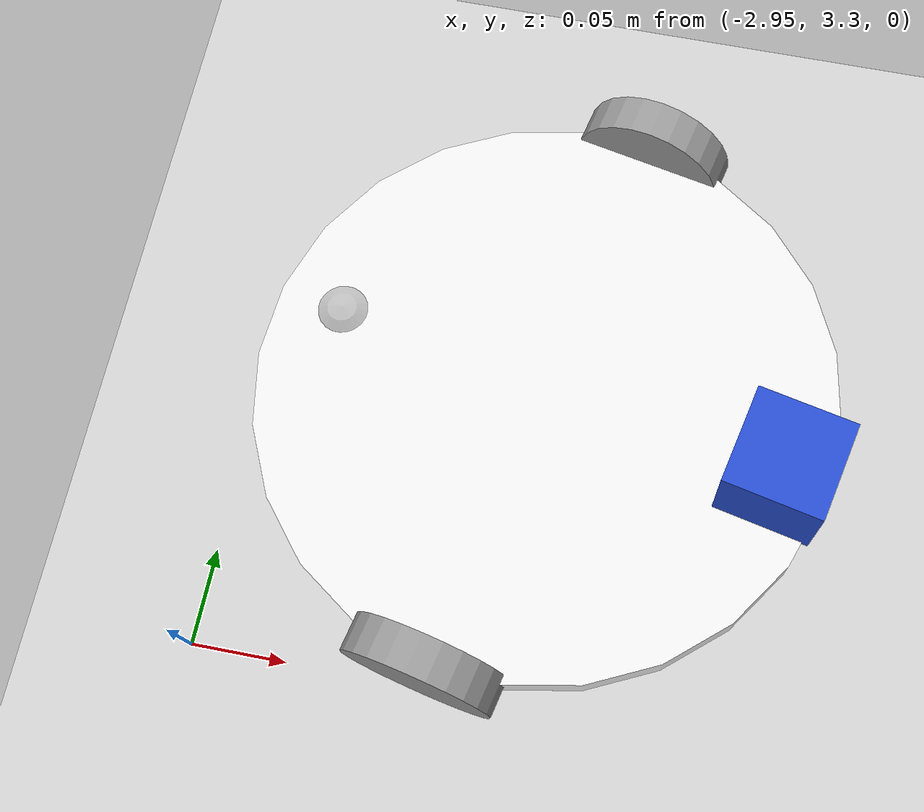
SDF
<sdf version="1.7">
 <world name="default">
  <light name="sun" type="directional">
   <pose>0 0 10 0 -0 0</pose>
   <diffuse>0.8 0.8 0.8 1</diffuse>
   <specular>0.2 0.2 0.2 1</specular>
   <attenuation>
    <range>1000</range>
    <constant>0.9</constant>
    <linear>0.01</linear>
    <quadratic>0.001</quadratic>
   </attenuation>
   <direction>-0.5 0.1 -0.9</direction>
   <spot><inner_angle>0</inner_angle><outer_angle>0</outer_angle><falloff>0</falloff></spot>
  </light>
  <model name="ground_plane">
   <static>1</static>
   <link name="link">
    <collision name="collision">
     <geometry><plane><normal>0 0 1</normal><size>100 100</size></plane></geometry>
     <surface>
      <contact><collide_bitmask>65535</collide_bitmask></contact>
      <friction><ode><mu>100</mu><mu2>50</mu2></ode></friction>
     </surface>
    </collision>
    <visual name="visual">
     <cast_shadows>0</cast_shadows>
     <geometry><plane><normal>0 0 1</normal><size>100 100</size></plane></geometry>
     <material>
      <script><uri>file://media/materials/scripts/gazebo.material</uri><name>Gazebo/Grey</name></script>
     </material>
    </visual>
   </link>
  </model>
  <gravity>0 0 -9.8</gravity>
  <magnetic_field>6e-06 2.3e-05 -4.2e-05</magnetic_field>
  <atmosphere type="adiabatic"/>
  <physics type="ode">
   <max_step_size>0.001</max_step_size>
   <real_time_factor>1</real_time_factor>
   <real_time_update_rate>1000</real_time_update_rate>
  </physics>
  <scene><ambient>0.4 0.4 0.4 1</ambient><background>0.7 0.7 0.7 1</background><shadows>1</shadows></scene>
  <spherical_coordinates>
   <surface_model>EARTH_WGS84</surface_model>
   <latitude_deg>0</latitude_deg>
   <longitude_deg>0</longitude_deg>
   <elevation>0</elevation>
   <heading_deg>0</heading_deg>
  </spherical_coordinates>
  <model name="diff_wheeled_robot">
   <link name="base_footprint">
    <inertial>
     <pose>-0.001667 0 0.041333 0 -0 0</pose>
     <mass>6.0001</mass>
     <inertia>
      <ixx>0.0304462</ixx>
      <ixy>0</ixy>
      <ixz>0.000191674</ixz>
      <iyy>0.0461545</iyy>
      <iyz>0</iyz>
      <izz>0.0740583</izz>
     </inertia>
    </inertial>
    <collision name="base_footprint_fixed_joint_lump__base_link_collision">
     <pose>0 0 0.04 0 -0 0</pose>
     <geometry><cylinder><length>0.02</length><radius>0.15</radius></cylinder></geometry>
    </collision>
    <collision name="base_footprint_fixed_joint_lump__caster_back_link_collision_1">
     <pose>-0.115 0 0.029 0 -0 0</pose>
     <geometry><sphere><radius>0.025</radius></sphere></geometry>
    </collision>
    <collision name="base_footprint_fixed_joint_lump__caster_front_link_collision_2">
     <pose>0.115 0 0.027 0 -0 0</pose>
     <geometry><sphere><radius>0.025</radius></sphere></geometry>
    </collision>
    <visual name="base_footprint_visual">
     <geometry><box><size>0.0001 0.0001 0.0001</size></box></geometry>
    </visual>
    <visual name="base_footprint_fixed_joint_lump__base_link_visual_1">
     <pose>0 0 0.04 0 -0 0</pose>
     <geometry><cylinder><length>0.02</length><radius>0.15</radius></cylinder></geometry>
     <material>
      <script><name>Gazebo/White</name><uri>file://media/materials/scripts/gazebo.material</uri></script>
     </material>
    </visual>
    <visual name="base_footprint_fixed_joint_lump__caster_back_link_visual_2">
     <pose>-0.115 0 0.029 0 -0 0</pose>
     <geometry><sphere><radius>0.025</radius></sphere></geometry>
    </visual>
    <visual name="base_footprint_fixed_joint_lump__caster_front_link_visual_3">
     <pose>0.115 0 0.027 0 -0 0</pose>
     <geometry><sphere><radius>0.025</radius></sphere></geometry>
    </visual>
    <visual name="base_footprint_fixed_joint_lump__hokuyo_link_visual_4">
     <pose>0.125 0 0.0725 0 -0 0</pose>
     <geometry><box><size>0.05 0.05 0.05</size></box></geometry>
     <material>
      <script><name>Gazebo/Blue</name><uri>file://media/materials/scripts/gazebo.material</uri></script>
     </material>
    </visual>
    <sensor name="head_hokuyo_sensor" type="ray">
     <visualize>0</visualize>
     <update_rate>40</update_rate>
     <ray>
      <scan>
       <horizontal>
        <samples>720</samples>
        <resolution>1</resolution>
        <min_angle>-1.5708</min_angle>
        <max_angle>1.5708</max_angle>
       </horizontal>
       <vertical><samples>1</samples><min_angle>0</min_angle><max_angle>0</max_angle></vertical>
      </scan>
      <range><min>0.1</min><max>10</max><resolution>0.001</resolution></range>
     </ray>
     <plugin name="gazebo_ros_head_hokuyo_controller" filename="libgazebo_ros_laser.so">
      <topicName>/scan</topicName>
      <frameName>hokuyo_link</frameName>
      <robotNamespace>/</robotNamespace>
     </plugin>
     <pose>0.15 0 0.0725 0 -0 0</pose>
    </sensor>
   </link>
   <joint name="front_left_wheel_joint" type="revolute">
    <pose relative_to="base_footprint">0 -0.15 0.04 0 -0 0</pose>
    <parent>base_footprint</parent>
    <child>front_left_wheel</child>
    <axis>
     <xyz>0 1 0</xyz>
     <limit><effort>100</effort><velocity>100</velocity><lower>-1e+16</lower><upper>1e+16</upper></limit>
     <dynamics><spring_reference>0</spring_reference><spring_stiffness>0</spring_stiffness></dynamics>
    </axis>
   </joint>
   <link name="front_left_wheel">
    <pose relative_to="front_left_wheel_joint">0 0 0 0 -0 0</pose>
    <inertial>
     <mass>2.5</mass>
     <inertia>
      <ixx>0.00108333</ixx>
      <ixy>0</ixy>
      <ixz>0</ixz>
      <iyy>0.00108333</iyy>
      <iyz>0</iyz>
      <izz>0.002</izz>
     </inertia>
    </inertial>
    <collision name="front_left_wheel_collision">
     <pose>0 0 0 1.5708 -0 0</pose>
     <geometry><cylinder><length>0.02</length><radius>0.04</radius></cylinder></geometry>
     <surface>
      <contact><ode><kp>1e+07</kp><kd>1</kd></ode></contact>
      <friction><ode><mu>1</mu><mu2>1</mu2><fdir1>1 0 0</fdir1></ode></friction>
     </surface>
    </collision>
    <visual name="front_left_wheel_visual">
     <pose>0 0 0 1.5708 -0 0</pose>
     <geometry><cylinder><length>0.02</length><radius>0.04</radius></cylinder></geometry>
     <material>
      <script><name>Gazebo/Grey</name><uri>file://media/materials/scripts/gazebo.material</uri></script>
     </material>
    </visual>
   </link>
   <joint name="front_right_wheel_joint" type="revolute">
    <pose relative_to="base_footprint">0 0.15 0.04 0 -0 0</pose>
    <parent>base_footprint</parent>
    <child>front_right_wheel</child>
    <axis>
     <xyz>0 1 0</xyz>
     <limit><effort>100</effort><velocity>100</velocity><lower>-1e+16</lower><upper>1e+16</upper></limit>
     <dynamics><spring_reference>0</spring_reference><spring_stiffness>0</spring_stiffness></dynamics>
    </axis>
   </joint>
   <link name="front_right_wheel">
    <pose relative_to="front_right_wheel_joint">0 0 0 0 -0 0</pose>
    <inertial>
     <mass>2.5</mass>
     <inertia>
      <ixx>0.00108333</ixx>
      <ixy>0</ixy>
      <ixz>0</ixz>
      <iyy>0.00108333</iyy>
      <iyz>0</iyz>
      <izz>0.002</izz>
     </inertia>
    </inertial>
    <collision name="front_right_wheel_collision">
     <pose>0 0 0 1.5708 -0 0</pose>
     <geometry><cylinder><length>0.02</length><radius>0.04</radius></cylinder></geometry>
     <surface>
      <contact><ode><kp>1e+07</kp><kd>1</kd></ode></contact>
      <friction><ode><mu>1</mu><mu2>1</mu2><fdir1>1 0 0</fdir1></ode></friction>
     </surface>
    </collision>
    <visual name="front_right_wheel_visual">
     <pose>0 0 0 1.5708 -0 0</pose>
     <geometry><cylinder><length>0.02</length><radius>0.04</radius></cylinder></geometry>
     <material>
      <script><name>Gazebo/Grey</name><uri>file://media/materials/scripts/gazebo.material</uri></script>
     </material>
    </visual>
   </link>
   <plugin name="differential_drive_controller" filename="libgazebo_ros_diff_drive.so">
    <rosDebugLevel>Debug</rosDebugLevel>
    <publishWheelTF>0</publishWheelTF>
    <robotNamespace>/</robotNamespace>
    <publishTf>1</publishTf>
    <publishWheelJointState>0</publishWheelJointState>
    <alwaysOn>1</alwaysOn>
    <updateRate>100.0</updateRate>
    <leftJoint>front_left_wheel_joint</leftJoint>
    <rightJoint>front_right_wheel_joint</rightJoint>
    <wheelSeparation>0.3</wheelSeparation>
    <wheelDiameter>0.08</wheelDiameter>
    <broadcastTF>1</broadcastTF>
    <wheelTorque>30</wheelTorque>
    <wheelAcceleration>1.8</wheelAcceleration>
    <commandTopic>cmd_vel</commandTopic>
    <odometryFrame>odom</odometryFrame>
    <odometryTopic>odom</odometryTopic>
    <robotBaseFrame>base_footprint</robotBaseFrame>
   </plugin>
   <frame name="caster_back_joint" attached_to="base_link"><pose>-0.135 0 0.009 -1.5708 0 0</pose></frame>
   <frame name="caster_back_link" attached_to="caster_back_joint"/>
   <frame name="caster_front_joint" attached_to="base_link"><pose>0.115 0 0.007 -1.5708 0 0</pose></frame>
   <frame name="caster_front_link" attached_to="caster_front_joint"/>
   <frame name="hokuyo_joint" attached_to="base_link"><pose>0.125 0 0.0325 0 -0 0</pose></frame>
   <frame name="hokuyo_link" attached_to="hokuyo_joint"/>
   <frame name="base_footprint_joint" attached_to="base_footprint"><pose>0 0 0.04 0 -0 0</pose></frame>
   <frame name="base_link" attached_to="base_footprint_joint"/>
   <pose>-2.79249 3.45392 2.1e-05 -2e-06 -0.03482 -0.216579</pose>
  </model>
 </world>
</sdf>
